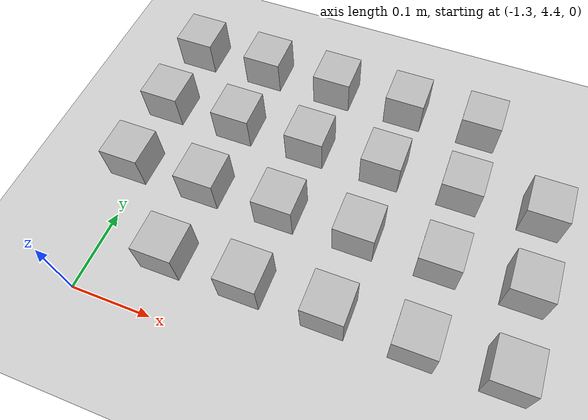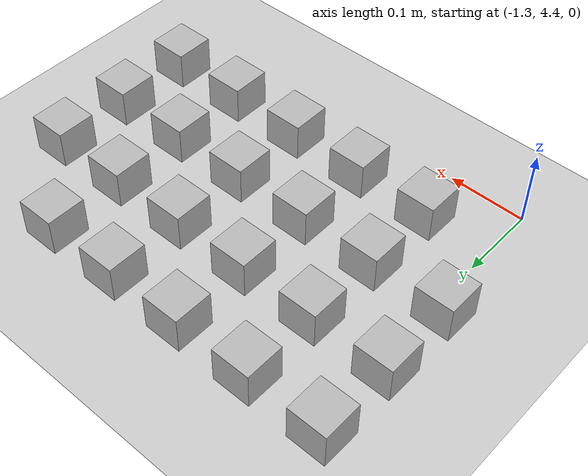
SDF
<sdf version="1.6">
 <world name="default">
  <model name="ground_plane">
   <static>1</static>
   <link name="link">
    <collision name="collision">
     <geometry><plane><normal>0 0 1</normal><size>100 100</size></plane></geometry>
     <surface><friction><ode><mu>100</mu><mu2>50</mu2></ode></friction></surface>
    </collision>
    <visual name="visual">
     <cast_shadows>0</cast_shadows>
     <geometry><plane><normal>0 0 1</normal><size>100 100</size></plane></geometry>
     <material>
      <script><uri>file://media/materials/scripts/gazebo.material</uri><name>Gazebo/Grey</name></script>
     </material>
    </visual>
   </link>
  </model>
  <model name="at1">
   <static>0</static>
   <link name="link">
    <inertial>
     <mass>0.01</mass>
     <inertia><ixx>4e-05</ixx><ixy>0</ixy><ixz>0</ixz><iyy>4e-05</iyy><iyz>0</iyz><izz>4e-05</izz></inertia>
    </inertial>
    <visual name="visual">
     <geometry><box><size>0.05 0.05 0.05</size></box></geometry>
     <material>
      <script>
       <uri>model://at0/materials/scripts</uri>
       <uri>model://at0/materials/textures</uri>
       <name>at0/Diffuse</name>
      </script>
     </material>
    </visual>
    <collision name="collision">
     <geometry><box><size>0.05 0.05 0.05</size></box></geometry>
     <surface><friction><ode><mu>0.8</mu><mu2>0.7</mu2></ode></friction></surface>
    </collision>
   </link>
   <pose>-1.21449 4.47479 0.024993 2.9e-05 -2.9e-05 -1e-06</pose>
  </model>
  <model name="at2">
   <static>0</static>
   <link name="link">
    <inertial>
     <mass>0.01</mass>
     <inertia><ixx>4e-05</ixx><ixy>0</ixy><ixz>0</ixz><iyy>4e-05</iyy><iyz>0</iyz><izz>4e-05</izz></inertia>
    </inertial>
    <visual name="visual">
     <geometry><box><size>0.05 0.05 0.05</size></box></geometry>
     <material>
      <script>
       <uri>model://at0/materials/scripts</uri>
       <uri>model://at0/materials/textures</uri>
       <name>at0/Diffuse</name>
      </script>
     </material>
    </visual>
    <collision name="collision">
     <geometry><box><size>0.05 0.05 0.05</size></box></geometry>
     <surface><friction><ode><mu>0.8</mu><mu2>0.7</mu2></ode></friction></surface>
    </collision>
   </link>
   <pose>-1.11449 4.47479 0.024993 2.9e-05 -2.9e-05 -1e-06</pose>
  </model>
  <model name="at3">
   <static>0</static>
   <link name="link">
    <inertial>
     <mass>0.01</mass>
     <inertia><ixx>4e-05</ixx><ixy>0</ixy><ixz>0</ixz><iyy>4e-05</iyy><iyz>0</iyz><izz>4e-05</izz></inertia>
    </inertial>
    <visual name="visual">
     <geometry><box><size>0.05 0.05 0.05</size></box></geometry>
     <material>
      <script>
       <uri>model://at0/materials/scripts</uri>
       <uri>model://at0/materials/textures</uri>
       <name>at0/Diffuse</name>
      </script>
     </material>
    </visual>
    <collision name="collision">
     <geometry><box><size>0.05 0.05 0.05</size></box></geometry>
     <surface><friction><ode><mu>0.8</mu><mu2>0.7</mu2></ode></friction></surface>
    </collision>
   </link>
   <pose>-1.01449 4.47479 0.024993 2.9e-05 -2.9e-05 -1e-06</pose>
  </model>
  <model name="at4">
   <static>0</static>
   <link name="link">
    <inertial>
     <mass>0.01</mass>
     <inertia><ixx>4e-05</ixx><ixy>0</ixy><ixz>0</ixz><iyy>4e-05</iyy><iyz>0</iyz><izz>4e-05</izz></inertia>
    </inertial>
    <visual name="visual">
     <geometry><box><size>0.05 0.05 0.05</size></box></geometry>
     <material>
      <script>
       <uri>model://at0/materials/scripts</uri>
       <uri>model://at0/materials/textures</uri>
       <name>at0/Diffuse</name>
      </script>
     </material>
    </visual>
    <collision name="collision">
     <geometry><box><size>0.05 0.05 0.05</size></box></geometry>
     <surface><friction><ode><mu>0.8</mu><mu2>0.7</mu2></ode></friction></surface>
    </collision>
   </link>
   <pose>-0.914491 4.47479 0.024993 2.9e-05 -2.9e-05 -1e-06</pose>
  </model>
  <model name="at5">
   <static>0</static>
   <link name="link">
    <inertial>
     <mass>0.01</mass>
     <inertia><ixx>4e-05</ixx><ixy>0</ixy><ixz>0</ixz><iyy>4e-05</iyy><iyz>0</iyz><izz>4e-05</izz></inertia>
    </inertial>
    <visual name="visual">
     <geometry><box><size>0.05 0.05 0.05</size></box></geometry>
     <material>
      <script>
       <uri>model://at0/materials/scripts</uri>
       <uri>model://at0/materials/textures</uri>
       <name>at0/Diffuse</name>
      </script>
     </material>
    </visual>
    <collision name="collision">
     <geometry><box><size>0.05 0.05 0.05</size></box></geometry>
     <surface><friction><ode><mu>0.8</mu><mu2>0.7</mu2></ode></friction></surface>
    </collision>
   </link>
   <pose>-0.814491 4.47479 0.024993 2.9e-05 -2.9e-05 -1e-06</pose>
  </model>
  <model name="at8">
   <static>0</static>
   <link name="link">
    <inertial>
     <mass>0.01</mass>
     <inertia><ixx>4e-05</ixx><ixy>0</ixy><ixz>0</ixz><iyy>4e-05</iyy><iyz>0</iyz><izz>4e-05</izz></inertia>
    </inertial>
    <visual name="visual">
     <geometry><box><size>0.05 0.05 0.05</size></box></geometry>
     <material>
      <script>
       <uri>model://at0/materials/scripts</uri>
       <uri>model://at0/materials/textures</uri>
       <name>at0/Diffuse</name>
      </script>
     </material>
    </visual>
    <collision name="collision">
     <geometry><box><size>0.05 0.05 0.05</size></box></geometry>
     <surface><friction><ode><mu>0.8</mu><mu2>0.7</mu2></ode></friction></surface>
    </collision>
   </link>
   <pose>-1.31449 4.57479 0.024993 2.9e-05 -2.9e-05 -1e-06</pose>
  </model>
  <model name="at9">
   <static>0</static>
   <link name="link">
    <inertial>
     <mass>0.01</mass>
     <inertia><ixx>4e-05</ixx><ixy>0</ixy><ixz>0</ixz><iyy>4e-05</iyy><iyz>0</iyz><izz>4e-05</izz></inertia>
    </inertial>
    <visual name="visual">
     <geometry><box><size>0.05 0.05 0.05</size></box></geometry>
     <material>
      <script>
       <uri>model://at0/materials/scripts</uri>
       <uri>model://at0/materials/textures</uri>
       <name>at0/Diffuse</name>
      </script>
     </material>
    </visual>
    <collision name="collision">
     <geometry><box><size>0.05 0.05 0.05</size></box></geometry>
     <surface><friction><ode><mu>0.8</mu><mu2>0.7</mu2></ode></friction></surface>
    </collision>
   </link>
   <pose>-1.21449 4.57479 0.024993 2.9e-05 -2.9e-05 -1e-06</pose>
  </model>
  <model name="at10">
   <static>0</static>
   <link name="link">
    <inertial>
     <mass>0.01</mass>
     <inertia><ixx>4e-05</ixx><ixy>0</ixy><ixz>0</ixz><iyy>4e-05</iyy><iyz>0</iyz><izz>4e-05</izz></inertia>
    </inertial>
    <visual name="visual">
     <geometry><box><size>0.05 0.05 0.05</size></box></geometry>
     <material>
      <script>
       <uri>model://at0/materials/scripts</uri>
       <uri>model://at0/materials/textures</uri>
       <name>at0/Diffuse</name>
      </script>
     </material>
    </visual>
    <collision name="collision">
     <geometry><box><size>0.05 0.05 0.05</size></box></geometry>
     <surface><friction><ode><mu>0.8</mu><mu2>0.7</mu2></ode></friction></surface>
    </collision>
   </link>
   <pose>-1.11449 4.57479 0.024993 2.9e-05 -2.9e-05 -1e-06</pose>
  </model>
  <model name="at11">
   <static>0</static>
   <link name="link">
    <inertial>
     <mass>0.01</mass>
     <inertia><ixx>4e-05</ixx><ixy>0</ixy><ixz>0</ixz><iyy>4e-05</iyy><iyz>0</iyz><izz>4e-05</izz></inertia>
    </inertial>
    <visual name="visual">
     <geometry><box><size>0.05 0.05 0.05</size></box></geometry>
     <material>
      <script>
       <uri>model://at0/materials/scripts</uri>
       <uri>model://at0/materials/textures</uri>
       <name>at0/Diffuse</name>
      </script>
     </material>
    </visual>
    <collision name="collision">
     <geometry><box><size>0.05 0.05 0.05</size></box></geometry>
     <surface><friction><ode><mu>0.8</mu><mu2>0.7</mu2></ode></friction></surface>
    </collision>
   </link>
   <pose>-1.01449 4.57479 0.024993 2.9e-05 -2.9e-05 -1e-06</pose>
  </model>
  <model name="at12">
   <static>0</static>
   <link name="link">
    <inertial>
     <mass>0.01</mass>
     <inertia><ixx>4e-05</ixx><ixy>0</ixy><ixz>0</ixz><iyy>4e-05</iyy><iyz>0</iyz><izz>4e-05</izz></inertia>
    </inertial>
    <visual name="visual">
     <geometry><box><size>0.05 0.05 0.05</size></box></geometry>
     <material>
      <script>
       <uri>model://at0/materials/scripts</uri>
       <uri>model://at0/materials/textures</uri>
       <name>at0/Diffuse</name>
      </script>
     </material>
    </visual>
    <collision name="collision">
     <geometry><box><size>0.05 0.05 0.05</size></box></geometry>
     <surface><friction><ode><mu>0.8</mu><mu2>0.7</mu2></ode></friction></surface>
    </collision>
   </link>
   <pose>-0.914491 4.57479 0.024993 2.9e-05 -2.9e-05 -1e-06</pose>
  </model>
  <model name="at13">
   <static>0</static>
   <link name="link">
    <inertial>
     <mass>0.01</mass>
     <inertia><ixx>4e-05</ixx><ixy>0</ixy><ixz>0</ixz><iyy>4e-05</iyy><iyz>0</iyz><izz>4e-05</izz></inertia>
    </inertial>
    <visual name="visual">
     <geometry><box><size>0.05 0.05 0.05</size></box></geometry>
     <material>
      <script>
       <uri>model://at0/materials/scripts</uri>
       <uri>model://at0/materials/textures</uri>
       <name>at0/Diffuse</name>
      </script>
     </material>
    </visual>
    <collision name="collision">
     <geometry><box><size>0.05 0.05 0.05</size></box></geometry>
     <surface><friction><ode><mu>0.8</mu><mu2>0.7</mu2></ode></friction></surface>
    </collision>
   </link>
   <pose>-0.814491 4.57479 0.024993 2.9e-05 -2.9e-05 -1e-06</pose>
  </model>
  <model name="at16">
   <static>0</static>
   <link name="link">
    <inertial>
     <mass>0.01</mass>
     <inertia><ixx>4e-05</ixx><ixy>0</ixy><ixz>0</ixz><iyy>4e-05</iyy><iyz>0</iyz><izz>4e-05</izz></inertia>
    </inertial>
    <visual name="visual">
     <geometry><box><size>0.05 0.05 0.05</size></box></geometry>
     <material>
      <script>
       <uri>model://at0/materials/scripts</uri>
       <uri>model://at0/materials/textures</uri>
       <name>at0/Diffuse</name>
      </script>
     </material>
    </visual>
    <collision name="collision">
     <geometry><box><size>0.05 0.05 0.05</size></box></geometry>
     <surface><friction><ode><mu>0.8</mu><mu2>0.7</mu2></ode></friction></surface>
    </collision>
   </link>
   <pose>-1.31449 4.67479 0.024993 2.9e-05 -2.9e-05 -1e-06</pose>
  </model>
  <model name="at17">
   <static>0</static>
   <link name="link">
    <inertial>
     <mass>0.01</mass>
     <inertia><ixx>4e-05</ixx><ixy>0</ixy><ixz>0</ixz><iyy>4e-05</iyy><iyz>0</iyz><izz>4e-05</izz></inertia>
    </inertial>
    <visual name="visual">
     <geometry><box><size>0.05 0.05 0.05</size></box></geometry>
     <material>
      <script>
       <uri>model://at0/materials/scripts</uri>
       <uri>model://at0/materials/textures</uri>
       <name>at0/Diffuse</name>
      </script>
     </material>
    </visual>
    <collision name="collision">
     <geometry><box><size>0.05 0.05 0.05</size></box></geometry>
     <surface><friction><ode><mu>0.8</mu><mu2>0.7</mu2></ode></friction></surface>
    </collision>
   </link>
   <pose>-1.21449 4.67479 0.024993 2.9e-05 -2.9e-05 -1e-06</pose>
  </model>
  <model name="at18">
   <static>0</static>
   <link name="link">
    <inertial>
     <mass>0.01</mass>
     <inertia><ixx>4e-05</ixx><ixy>0</ixy><ixz>0</ixz><iyy>4e-05</iyy><iyz>0</iyz><izz>4e-05</izz></inertia>
    </inertial>
    <visual name="visual">
     <geometry><box><size>0.05 0.05 0.05</size></box></geometry>
     <material>
      <script>
       <uri>model://at0/materials/scripts</uri>
       <uri>model://at0/materials/textures</uri>
       <name>at0/Diffuse</name>
      </script>
     </material>
    </visual>
    <collision name="collision">
     <geometry><box><size>0.05 0.05 0.05</size></box></geometry>
     <surface><friction><ode><mu>0.8</mu><mu2>0.7</mu2></ode></friction></surface>
    </collision>
   </link>
   <pose>-1.11449 4.67479 0.024993 2.9e-05 -2.9e-05 -1e-06</pose>
  </model>
  <model name="at19">
   <static>0</static>
   <link name="link">
    <inertial>
     <mass>0.01</mass>
     <inertia><ixx>4e-05</ixx><ixy>0</ixy><ixz>0</ixz><iyy>4e-05</iyy><iyz>0</iyz><izz>4e-05</izz></inertia>
    </inertial>
    <visual name="visual">
     <geometry><box><size>0.05 0.05 0.05</size></box></geometry>
     <material>
      <script>
       <uri>model://at0/materials/scripts</uri>
       <uri>model://at0/materials/textures</uri>
       <name>at0/Diffuse</name>
      </script>
     </material>
    </visual>
    <collision name="collision">
     <geometry><box><size>0.05 0.05 0.05</size></box></geometry>
     <surface><friction><ode><mu>0.8</mu><mu2>0.7</mu2></ode></friction></surface>
    </collision>
   </link>
   <pose>-1.01449 4.67479 0.024993 2.9e-05 -2.9e-05 -1e-06</pose>
  </model>
  <model name="at20">
   <static>0</static>
   <link name="link">
    <inertial>
     <mass>0.01</mass>
     <inertia><ixx>4e-05</ixx><ixy>0</ixy><ixz>0</ixz><iyy>4e-05</iyy><iyz>0</iyz><izz>4e-05</izz></inertia>
    </inertial>
    <visual name="visual">
     <geometry><box><size>0.05 0.05 0.05</size></box></geometry>
     <material>
      <script>
       <uri>model://at0/materials/scripts</uri>
       <uri>model://at0/materials/textures</uri>
       <name>at0/Diffuse</name>
      </script>
     </material>
    </visual>
    <collision name="collision">
     <geometry><box><size>0.05 0.05 0.05</size></box></geometry>
     <surface><friction><ode><mu>0.8</mu><mu2>0.7</mu2></ode></friction></surface>
    </collision>
   </link>
   <pose>-0.914491 4.67479 0.024993 2.9e-05 -2.9e-05 -1e-06</pose>
  </model>
  <model name="at21">
   <static>0</static>
   <link name="link">
    <inertial>
     <mass>0.01</mass>
     <inertia><ixx>4e-05</ixx><ixy>0</ixy><ixz>0</ixz><iyy>4e-05</iyy><iyz>0</iyz><izz>4e-05</izz></inertia>
    </inertial>
    <visual name="visual">
     <geometry><box><size>0.05 0.05 0.05</size></box></geometry>
     <material>
      <script>
       <uri>model://at0/materials/scripts</uri>
       <uri>model://at0/materials/textures</uri>
       <name>at0/Diffuse</name>
      </script>
     </material>
    </visual>
    <collision name="collision">
     <geometry><box><size>0.05 0.05 0.05</size></box></geometry>
     <surface><friction><ode><mu>0.8</mu><mu2>0.7</mu2></ode></friction></surface>
    </collision>
   </link>
   <pose>-0.814491 4.67479 0.024993 2.9e-05 -2.9e-05 -1e-06</pose>
  </model>
  <model name="at24">
   <static>0</static>
   <link name="link">
    <inertial>
     <mass>0.01</mass>
     <inertia><ixx>4e-05</ixx><ixy>0</ixy><ixz>0</ixz><iyy>4e-05</iyy><iyz>0</iyz><izz>4e-05</izz></inertia>
    </inertial>
    <visual name="visual">
     <geometry><box><size>0.05 0.05 0.05</size></box></geometry>
     <material>
      <script>
       <uri>model://at0/materials/scripts</uri>
       <uri>model://at0/materials/textures</uri>
       <name>at0/Diffuse</name>
      </script>
     </material>
    </visual>
    <collision name="collision">
     <geometry><box><size>0.05 0.05 0.05</size></box></geometry>
     <surface><friction><ode><mu>0.8</mu><mu2>0.7</mu2></ode></friction></surface>
    </collision>
   </link>
   <pose>-1.31449 4.77479 0.024993 2.9e-05 -2.9e-05 -1e-06</pose>
  </model>
  <model name="at25">
   <static>0</static>
   <link name="link">
    <inertial>
     <mass>0.01</mass>
     <inertia><ixx>4e-05</ixx><ixy>0</ixy><ixz>0</ixz><iyy>4e-05</iyy><iyz>0</iyz><izz>4e-05</izz></inertia>
    </inertial>
    <visual name="visual">
     <geometry><box><size>0.05 0.05 0.05</size></box></geometry>
     <material>
      <script>
       <uri>model://at0/materials/scripts</uri>
       <uri>model://at0/materials/textures</uri>
       <name>at0/Diffuse</name>
      </script>
     </material>
    </visual>
    <collision name="collision">
     <geometry><box><size>0.05 0.05 0.05</size></box></geometry>
     <surface><friction><ode><mu>0.8</mu><mu2>0.7</mu2></ode></friction></surface>
    </collision>
   </link>
   <pose>-1.21449 4.77479 0.024993 2.9e-05 -2.9e-05 -1e-06</pose>
  </model>
  <model name="at26">
   <static>0</static>
   <link name="link">
    <inertial>
     <mass>0.01</mass>
     <inertia><ixx>4e-05</ixx><ixy>0</ixy><ixz>0</ixz><iyy>4e-05</iyy><iyz>0</iyz><izz>4e-05</izz></inertia>
    </inertial>
    <visual name="visual">
     <geometry><box><size>0.05 0.05 0.05</size></box></geometry>
     <material>
      <script>
       <uri>model://at0/materials/scripts</uri>
       <uri>model://at0/materials/textures</uri>
       <name>at0/Diffuse</name>
      </script>
     </material>
    </visual>
    <collision name="collision">
     <geometry><box><size>0.05 0.05 0.05</size></box></geometry>
     <surface><friction><ode><mu>0.8</mu><mu2>0.7</mu2></ode></friction></surface>
    </collision>
   </link>
   <pose>-1.11449 4.77479 0.024993 2.9e-05 -2.9e-05 -1e-06</pose>
  </model>
  <model name="at27">
   <static>0</static>
   <link name="link">
    <inertial>
     <mass>0.01</mass>
     <inertia><ixx>4e-05</ixx><ixy>0</ixy><ixz>0</ixz><iyy>4e-05</iyy><iyz>0</iyz><izz>4e-05</izz></inertia>
    </inertial>
    <visual name="visual">
     <geometry><box><size>0.05 0.05 0.05</size></box></geometry>
     <material>
      <script>
       <uri>model://at0/materials/scripts</uri>
       <uri>model://at0/materials/textures</uri>
       <name>at0/Diffuse</name>
      </script>
     </material>
    </visual>
    <collision name="collision">
     <geometry><box><size>0.05 0.05 0.05</size></box></geometry>
     <surface><friction><ode><mu>0.8</mu><mu2>0.7</mu2></ode></friction></surface>
    </collision>
   </link>
   <pose>-1.01449 4.77479 0.024993 2.9e-05 -2.9e-05 -1e-06</pose>
  </model>
  <model name="at28">
   <static>0</static>
   <link name="link">
    <inertial>
     <mass>0.01</mass>
     <inertia><ixx>4e-05</ixx><ixy>0</ixy><ixz>0</ixz><iyy>4e-05</iyy><iyz>0</iyz><izz>4e-05</izz></inertia>
    </inertial>
    <visual name="visual">
     <geometry><box><size>0.05 0.05 0.05</size></box></geometry>
     <material>
      <script>
       <uri>model://at0/materials/scripts</uri>
       <uri>model://at0/materials/textures</uri>
       <name>at0/Diffuse</name>
      </script>
     </material>
    </visual>
    <collision name="collision">
     <geometry><box><size>0.05 0.05 0.05</size></box></geometry>
     <surface><friction><ode><mu>0.8</mu><mu2>0.7</mu2></ode></friction></surface>
    </collision>
   </link>
   <pose>-0.914491 4.77479 0.024993 2.9e-05 -2.9e-05 -1e-06</pose>
  </model>
 </world>
</sdf>
